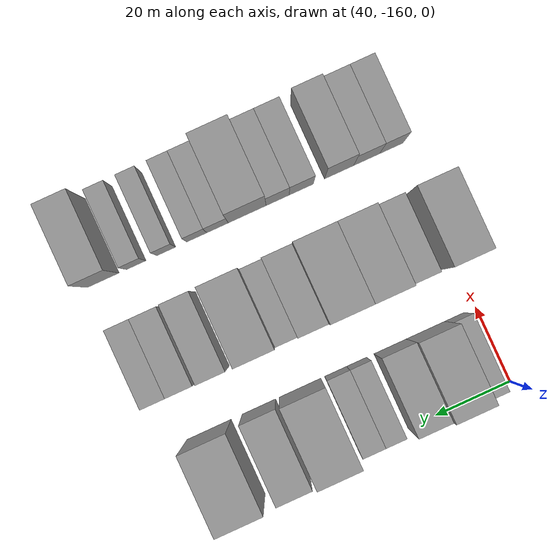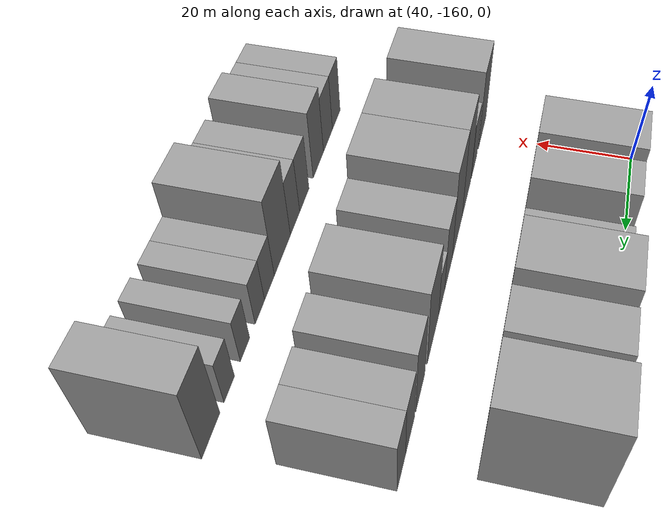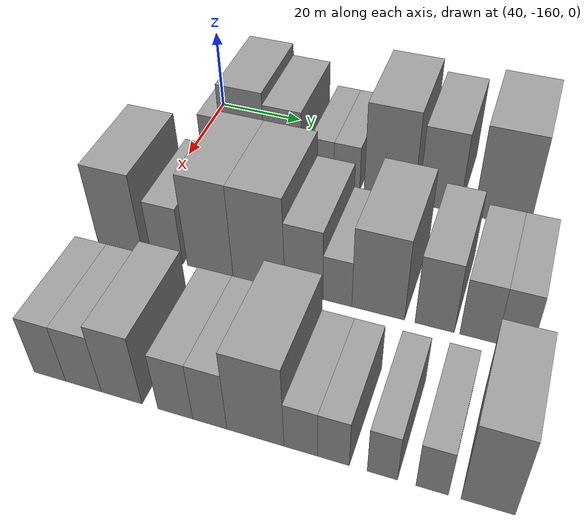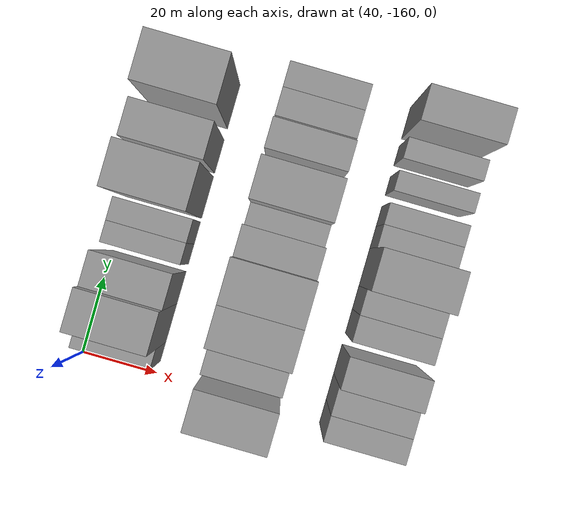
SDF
<sdf version="1.6">
 <world name="default">
  <model name="building_20">
   <static>1</static>
   <pose>50.0000 -154.2095 0 0.000000 0.000000 0.000000</pose>
   <link name="link">
    <pose>0 0 6.00 0 0 0</pose>
    <collision name="collision"><geometry><box><size>20.0000 5.1648 12.0000</size></box></geometry></collision>
    <visual name="visual">
     <cast_shadows>0</cast_shadows>
     <geometry><box><size>20.0000 5.1648 12.0000</size></box></geometry>
     <material>
      <script>
       <uri>model://grey_wall/materials/scripts</uri>
       <uri>model://grey_wall/materials/textures</uri>
       <name>vrc/grey_wall</name>
      </script>
     </material>
    </visual>
   </link>
  </model>
  <model name="building_21">
   <static>1</static>
   <pose>50.0000 -146.4476 0 0.000000 0.000000 0.000000</pose>
   <link name="link">
    <pose>0 0 10.50 0 0 0</pose>
    <collision name="collision"><geometry><box><size>20.0000 10.3590 21.0000</size></box></geometry></collision>
    <visual name="visual">
     <cast_shadows>0</cast_shadows>
     <geometry><box><size>20.0000 10.3590 21.0000</size></box></geometry>
     <material>
      <script>
       <uri>model://grey_wall/materials/scripts</uri>
       <uri>model://grey_wall/materials/textures</uri>
       <name>vrc/grey_wall</name>
      </script>
     </material>
    </visual>
   </link>
  </model>
  <model name="building_22">
   <static>1</static>
   <pose>50.0000 -136.9154 0 0.000000 0.000000 0.000000</pose>
   <link name="link">
    <pose>0 0 9.00 0 0 0</pose>
    <collision name="collision"><geometry><box><size>20.0000 8.7054 18.0000</size></box></geometry></collision>
    <visual name="visual">
     <cast_shadows>0</cast_shadows>
     <geometry><box><size>20.0000 8.7054 18.0000</size></box></geometry>
     <material>
      <script>
       <uri>model://grey_wall/materials/scripts</uri>
       <uri>model://grey_wall/materials/textures</uri>
       <name>vrc/grey_wall</name>
      </script>
     </material>
    </visual>
   </link>
  </model>
  <model name="building_23">
   <static>1</static>
   <pose>50.0000 -127.8699 0 0.000000 0.000000 0.000000</pose>
   <link name="link">
    <pose>0 0 6.00 0 0 0</pose>
    <collision name="collision"><geometry><box><size>20.0000 5.3856 12.0000</size></box></geometry></collision>
    <visual name="visual">
     <cast_shadows>0</cast_shadows>
     <geometry><box><size>20.0000 5.3856 12.0000</size></box></geometry>
     <material>
      <script>
       <uri>model://grey_wall/materials/scripts</uri>
       <uri>model://grey_wall/materials/textures</uri>
       <name>vrc/grey_wall</name>
      </script>
     </material>
    </visual>
   </link>
  </model>
  <model name="building_24">
   <static>1</static>
   <pose>50.0000 -122.2185 0 0.000000 0.000000 0.000000</pose>
   <link name="link">
    <pose>0 0 6.00 0 0 0</pose>
    <collision name="collision"><geometry><box><size>20.0000 5.9172 12.0000</size></box></geometry></collision>
    <visual name="visual">
     <cast_shadows>0</cast_shadows>
     <geometry><box><size>20.0000 5.9172 12.0000</size></box></geometry>
     <material>
      <script>
       <uri>model://grey_wall/materials/scripts</uri>
       <uri>model://grey_wall/materials/textures</uri>
       <name>vrc/grey_wall</name>
      </script>
     </material>
    </visual>
   </link>
  </model>
  <model name="building_25">
   <static>1</static>
   <pose>50.0000 -112.6740 0 0.000000 0.000000 0.000000</pose>
   <link name="link">
    <pose>0 0 12.00 0 0 0</pose>
    <collision name="collision"><geometry><box><size>20.0000 11.1717 24.0000</size></box></geometry></collision>
    <visual name="visual">
     <cast_shadows>0</cast_shadows>
     <geometry><box><size>20.0000 11.1717 24.0000</size></box></geometry>
     <material>
      <script>
       <uri>model://grey_wall/materials/scripts</uri>
       <uri>model://grey_wall/materials/textures</uri>
       <name>vrc/grey_wall</name>
      </script>
     </material>
    </visual>
   </link>
  </model>
  <model name="building_26">
   <static>1</static>
   <pose>50.0000 -101.6090 0 0.000000 0.000000 0.000000</pose>
   <link name="link">
    <pose>0 0 10.50 0 0 0</pose>
    <collision name="collision"><geometry><box><size>20.0000 8.9583 21.0000</size></box></geometry></collision>
    <visual name="visual">
     <cast_shadows>0</cast_shadows>
     <geometry><box><size>20.0000 8.9583 21.0000</size></box></geometry>
     <material>
      <script>
       <uri>model://grey_wall/materials/scripts</uri>
       <uri>model://grey_wall/materials/textures</uri>
       <name>vrc/grey_wall</name>
      </script>
     </material>
    </visual>
   </link>
  </model>
  <model name="building_27">
   <static>1</static>
   <pose>50.0000 -88.2075 0 0.000000 0.000000 0.000000</pose>
   <link name="link">
    <pose>0 0 12.00 0 0 0</pose>
    <collision name="collision"><geometry><box><size>20.0000 11.8447 24.0000</size></box></geometry></collision>
    <visual name="visual">
     <cast_shadows>0</cast_shadows>
     <geometry><box><size>20.0000 11.8447 24.0000</size></box></geometry>
     <material>
      <script>
       <uri>model://grey_wall/materials/scripts</uri>
       <uri>model://grey_wall/materials/textures</uri>
       <name>vrc/grey_wall</name>
      </script>
     </material>
    </visual>
   </link>
  </model>
  <model name="building_98">
   <static>1</static>
   <pose>82.0000 -160.6134 0 0.000000 0.000000 0.000000</pose>
   <link name="link">
    <pose>0 0 10.50 0 0 0</pose>
    <collision name="collision"><geometry><box><size>20.0000 10.1037 21.0000</size></box></geometry></collision>
    <visual name="visual">
     <cast_shadows>0</cast_shadows>
     <geometry><box><size>20.0000 10.1037 21.0000</size></box></geometry>
     <material>
      <script>
       <uri>model://grey_wall/materials/scripts</uri>
       <uri>model://grey_wall/materials/textures</uri>
       <name>vrc/grey_wall</name>
      </script>
     </material>
    </visual>
   </link>
  </model>
  <model name="building_99">
   <static>1</static>
   <pose>82.0000 -150.1094 0 0.000000 0.000000 0.000000</pose>
   <link name="link">
    <pose>0 0 7.50 0 0 0</pose>
    <collision name="collision"><geometry><box><size>20.0000 6.9044 15.0000</size></box></geometry></collision>
    <visual name="visual">
     <cast_shadows>0</cast_shadows>
     <geometry><box><size>20.0000 6.9044 15.0000</size></box></geometry>
     <material>
      <script>
       <uri>model://grey_wall/materials/scripts</uri>
       <uri>model://grey_wall/materials/textures</uri>
       <name>vrc/grey_wall</name>
      </script>
     </material>
    </visual>
   </link>
  </model>
  <model name="building_100">
   <static>1</static>
   <pose>82.0000 -140.7523 0 0.000000 0.000000 0.000000</pose>
   <link name="link">
    <pose>0 0 12.00 0 0 0</pose>
    <collision name="collision"><geometry><box><size>20.0000 9.8098 24.0000</size></box></geometry></collision>
    <visual name="visual">
     <cast_shadows>0</cast_shadows>
     <geometry><box><size>20.0000 9.8098 24.0000</size></box></geometry>
     <material>
      <script>
       <uri>model://grey_wall/materials/scripts</uri>
       <uri>model://grey_wall/materials/textures</uri>
       <name>vrc/grey_wall</name>
      </script>
     </material>
    </visual>
   </link>
  </model>
  <model name="building_101">
   <static>1</static>
   <pose>82.0000 -130.4008 0 0.000000 0.000000 0.000000</pose>
   <link name="link">
    <pose>0 0 12.00 0 0 0</pose>
    <collision name="collision"><geometry><box><size>20.0000 10.8930 24.0000</size></box></geometry></collision>
    <visual name="visual">
     <cast_shadows>0</cast_shadows>
     <geometry><box><size>20.0000 10.8930 24.0000</size></box></geometry>
     <material>
      <script>
       <uri>model://grey_wall/materials/scripts</uri>
       <uri>model://grey_wall/materials/textures</uri>
       <name>vrc/grey_wall</name>
      </script>
     </material>
    </visual>
   </link>
  </model>
  <model name="building_102">
   <static>1</static>
   <pose>82.0000 -121.0931 0 0.000000 0.000000 0.000000</pose>
   <link name="link">
    <pose>0 0 9.00 0 0 0</pose>
    <collision name="collision"><geometry><box><size>20.0000 7.7226 18.0000</size></box></geometry></collision>
    <visual name="visual">
     <cast_shadows>0</cast_shadows>
     <geometry><box><size>20.0000 7.7226 18.0000</size></box></geometry>
     <material>
      <script>
       <uri>model://grey_wall/materials/scripts</uri>
       <uri>model://grey_wall/materials/textures</uri>
       <name>vrc/grey_wall</name>
      </script>
     </material>
    </visual>
   </link>
  </model>
  <model name="building_103">
   <static>1</static>
   <pose>82.0000 -114.3561 0 0.000000 0.000000 0.000000</pose>
   <link name="link">
    <pose>0 0 6.00 0 0 0</pose>
    <collision name="collision"><geometry><box><size>20.0000 5.7513 12.0000</size></box></geometry></collision>
    <visual name="visual">
     <cast_shadows>0</cast_shadows>
     <geometry><box><size>20.0000 5.7513 12.0000</size></box></geometry>
     <material>
      <script>
       <uri>model://grey_wall/materials/scripts</uri>
       <uri>model://grey_wall/materials/textures</uri>
       <name>vrc/grey_wall</name>
      </script>
     </material>
    </visual>
   </link>
  </model>
  <model name="building_104">
   <static>1</static>
   <pose>82.0000 -106.3276 0 0.000000 0.000000 0.000000</pose>
   <link name="link">
    <pose>0 0 10.50 0 0 0</pose>
    <collision name="collision"><geometry><box><size>20.0000 10.3056 21.0000</size></box></geometry></collision>
    <visual name="visual">
     <cast_shadows>0</cast_shadows>
     <geometry><box><size>20.0000 10.3056 21.0000</size></box></geometry>
     <material>
      <script>
       <uri>model://grey_wall/materials/scripts</uri>
       <uri>model://grey_wall/materials/textures</uri>
       <name>vrc/grey_wall</name>
      </script>
     </material>
    </visual>
   </link>
  </model>
  <model name="building_105">
   <static>1</static>
   <pose>82.0000 -95.4445 0 0.000000 0.000000 0.000000</pose>
   <link name="link">
    <pose>0 0 9.00 0 0 0</pose>
    <collision name="collision"><geometry><box><size>20.0000 7.4608 18.0000</size></box></geometry></collision>
    <visual name="visual">
     <cast_shadows>0</cast_shadows>
     <geometry><box><size>20.0000 7.4608 18.0000</size></box></geometry>
     <material>
      <script>
       <uri>model://grey_wall/materials/scripts</uri>
       <uri>model://grey_wall/materials/textures</uri>
       <name>vrc/grey_wall</name>
      </script>
     </material>
    </visual>
   </link>
  </model>
  <model name="building_106">
   <static>1</static>
   <pose>82.0000 -87.2612 0 0.000000 0.000000 0.000000</pose>
   <link name="link">
    <pose>0 0 7.50 0 0 0</pose>
    <collision name="collision"><geometry><box><size>20.0000 6.9058 15.0000</size></box></geometry></collision>
    <visual name="visual">
     <cast_shadows>0</cast_shadows>
     <geometry><box><size>20.0000 6.9058 15.0000</size></box></geometry>
     <material>
      <script>
       <uri>model://grey_wall/materials/scripts</uri>
       <uri>model://grey_wall/materials/textures</uri>
       <name>vrc/grey_wall</name>
      </script>
     </material>
    </visual>
   </link>
  </model>
  <model name="building_107">
   <static>1</static>
   <pose>82.0000 -80.6620 0 0.000000 0.000000 0.000000</pose>
   <link name="link">
    <pose>0 0 7.50 0 0 0</pose>
    <collision name="collision"><geometry><box><size>20.0000 6.2925 15.0000</size></box></geometry></collision>
    <visual name="visual">
     <cast_shadows>0</cast_shadows>
     <geometry><box><size>20.0000 6.2925 15.0000</size></box></geometry>
     <material>
      <script>
       <uri>model://grey_wall/materials/scripts</uri>
       <uri>model://grey_wall/materials/textures</uri>
       <name>vrc/grey_wall</name>
      </script>
     </material>
    </visual>
   </link>
  </model>
  <model name="building_175">
   <static>1</static>
   <pose>114.0000 -157.4516 0 0.000000 0.000000 0.000000</pose>
   <link name="link">
    <pose>0 0 7.50 0 0 0</pose>
    <collision name="collision"><geometry><box><size>20.0000 6.3310 15.0000</size></box></geometry></collision>
    <visual name="visual">
     <cast_shadows>0</cast_shadows>
     <geometry><box><size>20.0000 6.3310 15.0000</size></box></geometry>
     <material>
      <script>
       <uri>model://grey_wall/materials/scripts</uri>
       <uri>model://grey_wall/materials/textures</uri>
       <name>vrc/grey_wall</name>
      </script>
     </material>
    </visual>
   </link>
  </model>
  <model name="building_176">
   <static>1</static>
   <pose>114.0000 -150.7712 0 0.000000 0.000000 0.000000</pose>
   <link name="link">
    <pose>0 0 7.50 0 0 0</pose>
    <collision name="collision"><geometry><box><size>20.0000 7.0297 15.0000</size></box></geometry></collision>
    <visual name="visual">
     <cast_shadows>0</cast_shadows>
     <geometry><box><size>20.0000 7.0297 15.0000</size></box></geometry>
     <material>
      <script>
       <uri>model://grey_wall/materials/scripts</uri>
       <uri>model://grey_wall/materials/textures</uri>
       <name>vrc/grey_wall</name>
      </script>
     </material>
    </visual>
   </link>
  </model>
  <model name="building_177">
   <static>1</static>
   <pose>114.0000 -143.3449 0 0.000000 0.000000 0.000000</pose>
   <link name="link">
    <pose>0 0 9.00 0 0 0</pose>
    <collision name="collision"><geometry><box><size>20.0000 7.8231 18.0000</size></box></geometry></collision>
    <visual name="visual">
     <cast_shadows>0</cast_shadows>
     <geometry><box><size>20.0000 7.8231 18.0000</size></box></geometry>
     <material>
      <script>
       <uri>model://grey_wall/materials/scripts</uri>
       <uri>model://grey_wall/materials/textures</uri>
       <name>vrc/grey_wall</name>
      </script>
     </material>
    </visual>
   </link>
  </model>
  <model name="building_178">
   <static>1</static>
   <pose>114.0000 -133.1772 0 0.000000 0.000000 0.000000</pose>
   <link name="link">
    <pose>0 0 7.50 0 0 0</pose>
    <collision name="collision"><geometry><box><size>20.0000 6.5122 15.0000</size></box></geometry></collision>
    <visual name="visual">
     <cast_shadows>0</cast_shadows>
     <geometry><box><size>20.0000 6.5122 15.0000</size></box></geometry>
     <material>
      <script>
       <uri>model://grey_wall/materials/scripts</uri>
       <uri>model://grey_wall/materials/textures</uri>
       <name>vrc/grey_wall</name>
      </script>
     </material>
    </visual>
   </link>
  </model>
  <model name="building_179">
   <static>1</static>
   <pose>114.0000 -126.8048 0 0.000000 0.000000 0.000000</pose>
   <link name="link">
    <pose>0 0 7.50 0 0 0</pose>
    <collision name="collision"><geometry><box><size>20.0000 6.2327 15.0000</size></box></geometry></collision>
    <visual name="visual">
     <cast_shadows>0</cast_shadows>
     <geometry><box><size>20.0000 6.2327 15.0000</size></box></geometry>
     <material>
      <script>
       <uri>model://grey_wall/materials/scripts</uri>
       <uri>model://grey_wall/materials/textures</uri>
       <name>vrc/grey_wall</name>
      </script>
     </material>
    </visual>
   </link>
  </model>
  <model name="building_180">
   <static>1</static>
   <pose>114.0000 -118.6157 0 0.000000 0.000000 0.000000</pose>
   <link name="link">
    <pose>0 0 10.50 0 0 0</pose>
    <collision name="collision"><geometry><box><size>20.0000 10.1454 21.0000</size></box></geometry></collision>
    <visual name="visual">
     <cast_shadows>0</cast_shadows>
     <geometry><box><size>20.0000 10.1454 21.0000</size></box></geometry>
     <material>
      <script>
       <uri>model://grey_wall/materials/scripts</uri>
       <uri>model://grey_wall/materials/textures</uri>
       <name>vrc/grey_wall</name>
      </script>
     </material>
    </visual>
   </link>
  </model>
  <model name="building_181">
   <static>1</static>
   <pose>114.0000 -110.6428 0 0.000000 0.000000 0.000000</pose>
   <link name="link">
    <pose>0 0 6.00 0 0 0</pose>
    <collision name="collision"><geometry><box><size>20.0000 5.8006 12.0000</size></box></geometry></collision>
    <visual name="visual">
     <cast_shadows>0</cast_shadows>
     <geometry><box><size>20.0000 5.8006 12.0000</size></box></geometry>
     <material>
      <script>
       <uri>model://grey_wall/materials/scripts</uri>
       <uri>model://grey_wall/materials/textures</uri>
       <name>vrc/grey_wall</name>
      </script>
     </material>
    </visual>
   </link>
  </model>
  <model name="building_182">
   <static>1</static>
   <pose>114.0000 -105.0446 0 0.000000 0.000000 0.000000</pose>
   <link name="link">
    <pose>0 0 6.00 0 0 0</pose>
    <collision name="collision"><geometry><box><size>20.0000 5.3958 12.0000</size></box></geometry></collision>
    <visual name="visual">
     <cast_shadows>0</cast_shadows>
     <geometry><box><size>20.0000 5.3958 12.0000</size></box></geometry>
     <material>
      <script>
       <uri>model://grey_wall/materials/scripts</uri>
       <uri>model://grey_wall/materials/textures</uri>
       <name>vrc/grey_wall</name>
      </script>
     </material>
    </visual>
   </link>
  </model>
  <model name="building_183">
   <static>1</static>
   <pose>114.0000 -96.8426 0 0.000000 0.000000 0.000000</pose>
   <link name="link">
    <pose>0 0 6.00 0 0 0</pose>
    <collision name="collision"><geometry><box><size>20.0000 5.0082 12.0000</size></box></geometry></collision>
    <visual name="visual">
     <cast_shadows>0</cast_shadows>
     <geometry><box><size>20.0000 5.0082 12.0000</size></box></geometry>
     <material>
      <script>
       <uri>model://grey_wall/materials/scripts</uri>
       <uri>model://grey_wall/materials/textures</uri>
       <name>vrc/grey_wall</name>
      </script>
     </material>
    </visual>
   </link>
  </model>
  <model name="building_184">
   <static>1</static>
   <pose>114.0000 -88.7214 0 0.000000 0.000000 0.000000</pose>
   <link name="link">
    <pose>0 0 6.00 0 0 0</pose>
    <collision name="collision"><geometry><box><size>20.0000 5.2343 12.0000</size></box></geometry></collision>
    <visual name="visual">
     <cast_shadows>0</cast_shadows>
     <geometry><box><size>20.0000 5.2343 12.0000</size></box></geometry>
     <material>
      <script>
       <uri>model://grey_wall/materials/scripts</uri>
       <uri>model://grey_wall/materials/textures</uri>
       <name>vrc/grey_wall</name>
      </script>
     </material>
    </visual>
   </link>
  </model>
  <model name="building_185">
   <static>1</static>
   <pose>114.0000 -79.8725 0 0.000000 0.000000 0.000000</pose>
   <link name="link">
    <pose>0 0 10.50 0 0 0</pose>
    <collision name="collision"><geometry><box><size>20.0000 8.4635 21.0000</size></box></geometry></collision>
    <visual name="visual">
     <cast_shadows>0</cast_shadows>
     <geometry><box><size>20.0000 8.4635 21.0000</size></box></geometry>
     <material>
      <script>
       <uri>model://grey_wall/materials/scripts</uri>
       <uri>model://grey_wall/materials/textures</uri>
       <name>vrc/grey_wall</name>
      </script>
     </material>
    </visual>
   </link>
  </model>
 </world>
</sdf>
